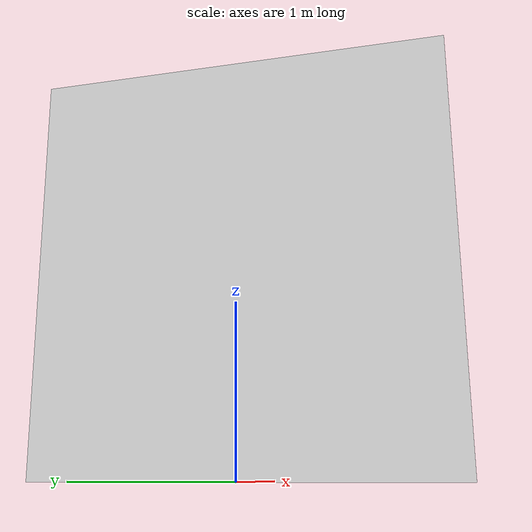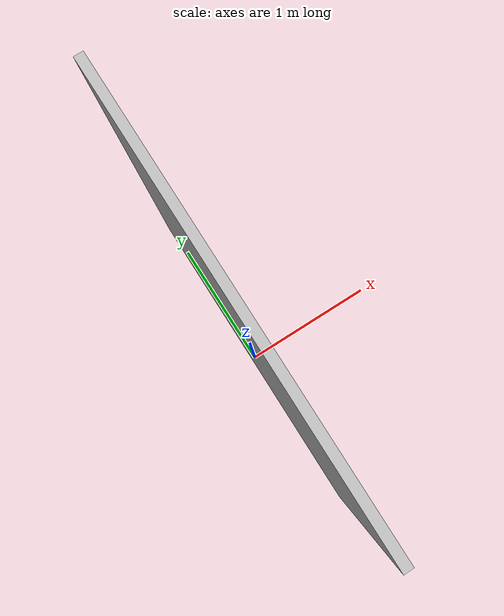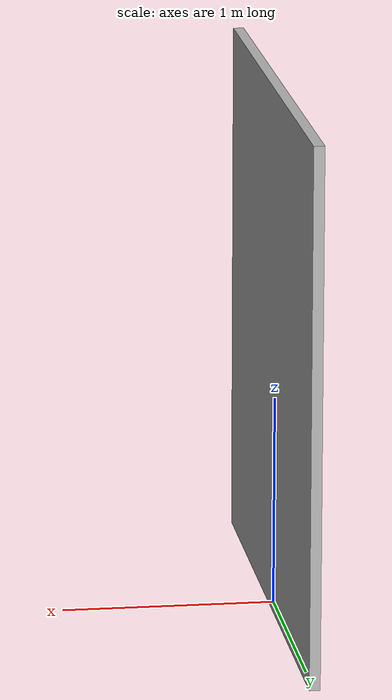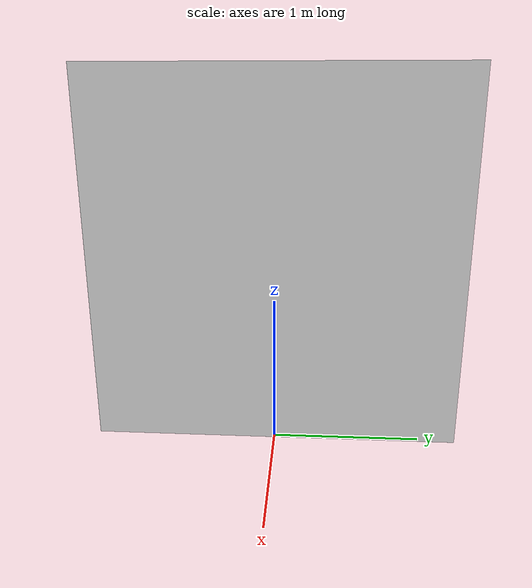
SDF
<?xml version="1.0" ?>
<sdf version="1.6">
  <model name="Marker0">
    <static>true</static>
    <link name="link">
      <visual name="visual">
        <geometry>
          <mesh>
            <uri>model://ar_tag/meshes/Marker1.dae</uri>
            <scale>5 5 5</scale> // Scale the ar_tag ******
          </mesh>
        </geometry>
      </visual>
    </link>
  </model>
</sdf>
